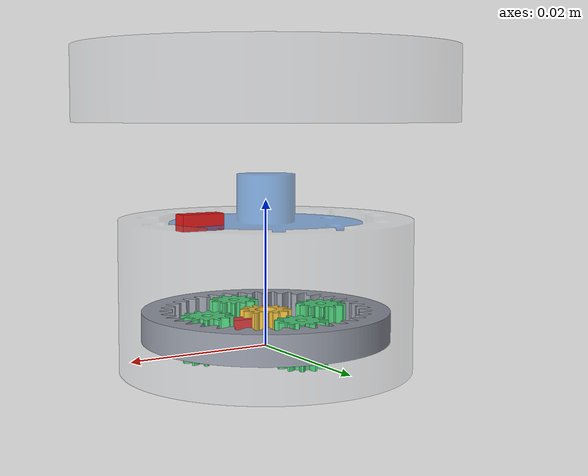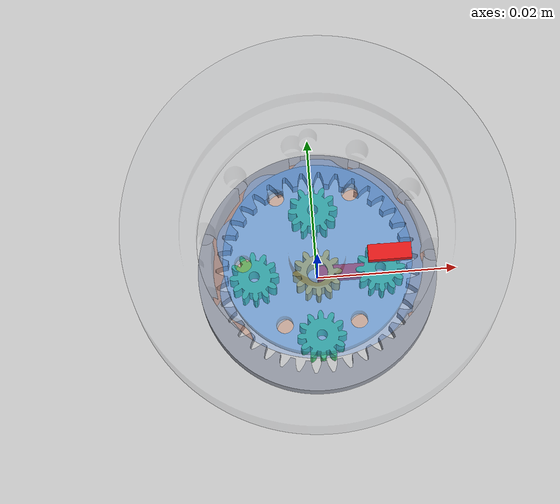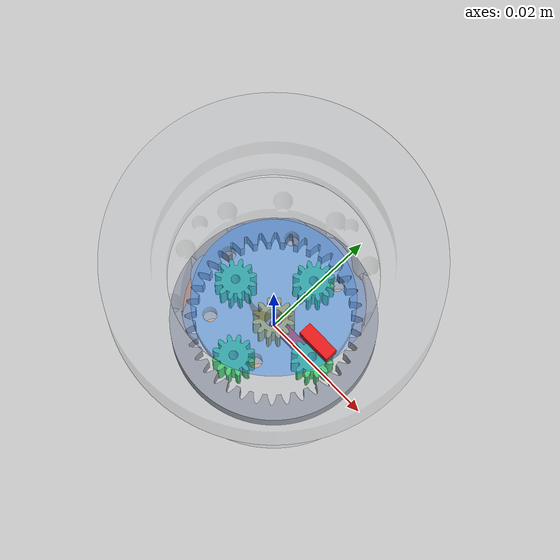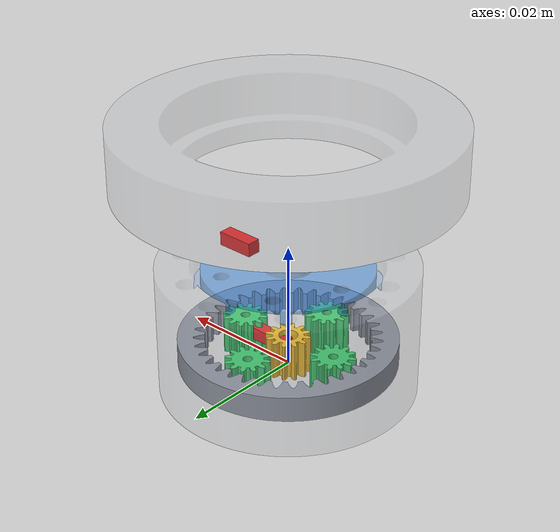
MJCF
<mujoco model="hybrid_viewer">

  <compiler meshdir="../cycloidal/out" angle="degree" autolimits="true"/>
  <option gravity="0 0 0"/>

  <asset>
    <mesh name="housing"     file="housing.stl"           scale="0.001 0.001 0.001"/>
    <mesh name="cap"         file="output_cap.stl"        scale="0.001 0.001 0.001"/>
    <mesh name="planet_ring" file="planet_ring.stl"       scale="0.001 0.001 0.001"/>
    <mesh name="sun"         file="sun.stl"               scale="0.001 0.001 0.001"/>
    <mesh name="planet"      file="planet.stl"            scale="0.001 0.001 0.001"/>
    <mesh name="carrier"     file="carrier_eccentric.stl" scale="0.001 0.001 0.001"/>
    <mesh name="disc"        file="disc.stl"              scale="0.001 0.001 0.001"/>
    <mesh name="output"      file="output_carrier.stl"    scale="0.001 0.001 0.001"/>
    <material name="case"  rgba="0.70 0.72 0.75 0.10"/>   <!-- translucent shell      -->
    <material name="ringg" rgba="0.55 0.57 0.62 1"/>
    <material name="sun"   rgba="0.95 0.72 0.10 1"/>      <!-- input: bright, opaque   -->
    <material name="plan"  rgba="0.20 0.80 0.40 1"/>
    <material name="carr"  rgba="0.80 0.45 0.30 0.35"/>   <!-- translucent: see the sun -->
    <material name="disc"  rgba="0.40 0.60 0.90 0.35"/>   <!-- translucent              -->
    <material name="out"   rgba="0.25 0.55 0.90 0.55"/>
    <material name="mark"  rgba="0.90 0.10 0.10 1"/>      <!-- rotation index markers   -->
  </asset>

  <worldbody>
    <light pos="0.05 -0.05 0.12" dir="-0.4 0.4 -1"/>
    <camera name="iso" pos="0.060 -0.060 0.055" xyaxes="0.7 0.7 0 -0.4 0.4 0.82"/>

    <!-- translucent enclosed can (context) -->
    <geom type="mesh" mesh="housing" material="case" contype="0" conaffinity="0"/>
    <geom type="mesh" mesh="cap" material="case" pos="0 0 0.0175" contype="0" conaffinity="0"/>

    <!-- fixed planetary ring gear -->
    <geom type="mesh" mesh="planet_ring" material="ringg" pos="0 0 0.001"/>

    <!-- sun on the motor shaft: 40x (the input). Bright + a radial marker so the
         fast spin reads through the translucent carrier/disc stacked above it. -->
    <body name="sun_body" pos="0 0 0.001">
      <joint name="joint_sun" type="hinge" axis="0 0 1"/>
      <geom type="mesh" mesh="sun" material="sun"/>
      <geom type="box" pos="0.0036 0 0.0021" size="0.0036 0.0010 0.0010" material="mark"/>
    </body>

    <!-- carrier-eccentric: planet carrier (10x); orbits planets + carries the disc -->
    <body name="planet_carrier_body" pos="0 0 0.0055">
      <joint name="joint_pcarrier" type="hinge" axis="0 0 1"/>
      <geom type="mesh" mesh="carrier" material="carr"/>
      <geom type="box" pos="0.012 0 0.0024" size="0.003 0.001 0.001" material="carr"/>

      <body name="planet0" pos="0.009 0 -0.0045"><joint name="joint_planet0" type="hinge" axis="0 0 1"/>
        <geom type="mesh" mesh="planet" material="plan"/></body>
      <body name="planet1" pos="0 0.009 -0.0045"><joint name="joint_planet1" type="hinge" axis="0 0 1"/>
        <geom type="mesh" mesh="planet" material="plan"/></body>
      <body name="planet2" pos="-0.009 0 -0.0045"><joint name="joint_planet2" type="hinge" axis="0 0 1"/>
        <geom type="mesh" mesh="planet" material="plan"/></body>
      <body name="planet3" pos="0 -0.009 -0.0045"><joint name="joint_planet3" type="hinge" axis="0 0 1"/>
        <geom type="mesh" mesh="planet" material="plan"/></body>

      <!-- cycloidal disc rides the eccentric journal (offset by E), orbits with the carrier -->
      <geom type="mesh" mesh="disc" material="disc" pos="0.0007 0 0.003"/>
    </body>

    <!-- output carrier: 1x, the slow output -->
    <body name="output_body" pos="0 0 0.014">
      <joint name="joint_out" type="hinge" axis="0 0 1"/>
      <geom type="mesh" mesh="output" material="out"/>
      <geom type="box" pos="0.010 0 0.0035" size="0.003 0.0011 0.0011" material="mark"/>
    </body>
  </worldbody>
</mujoco>
